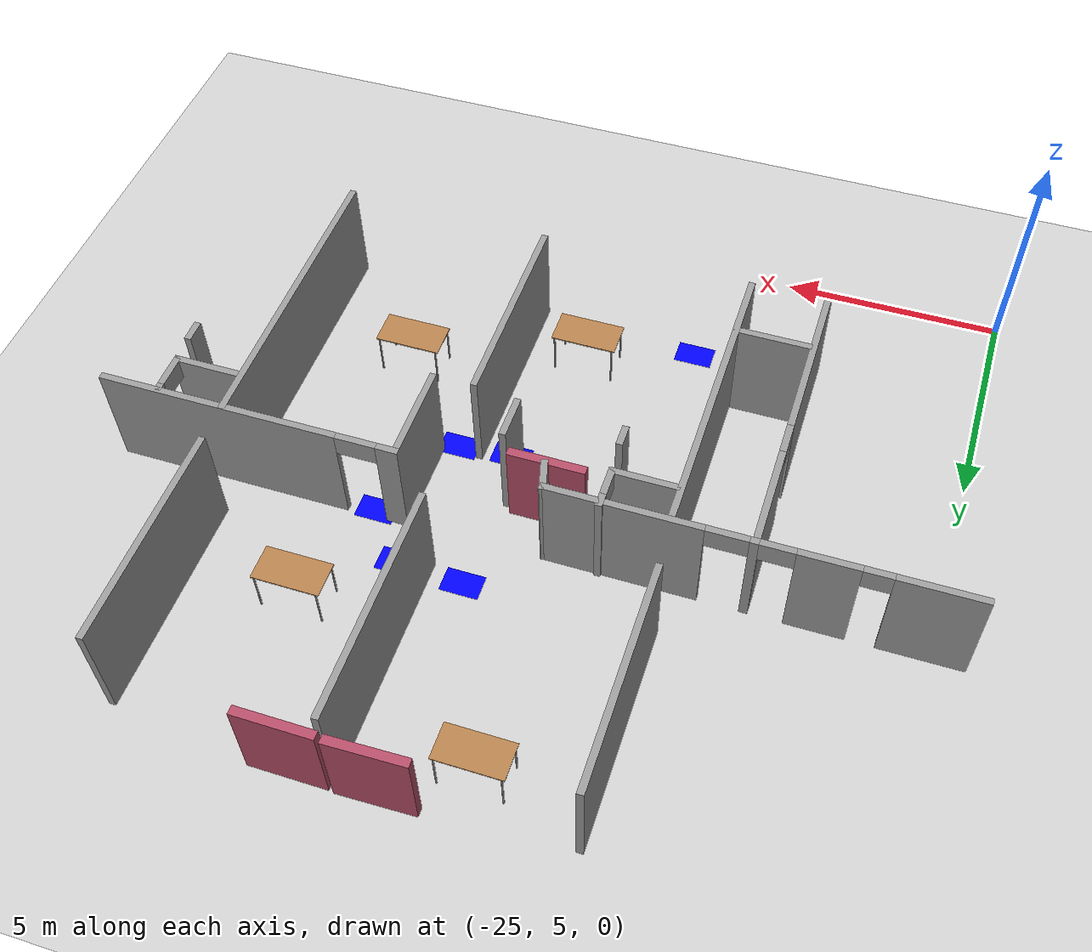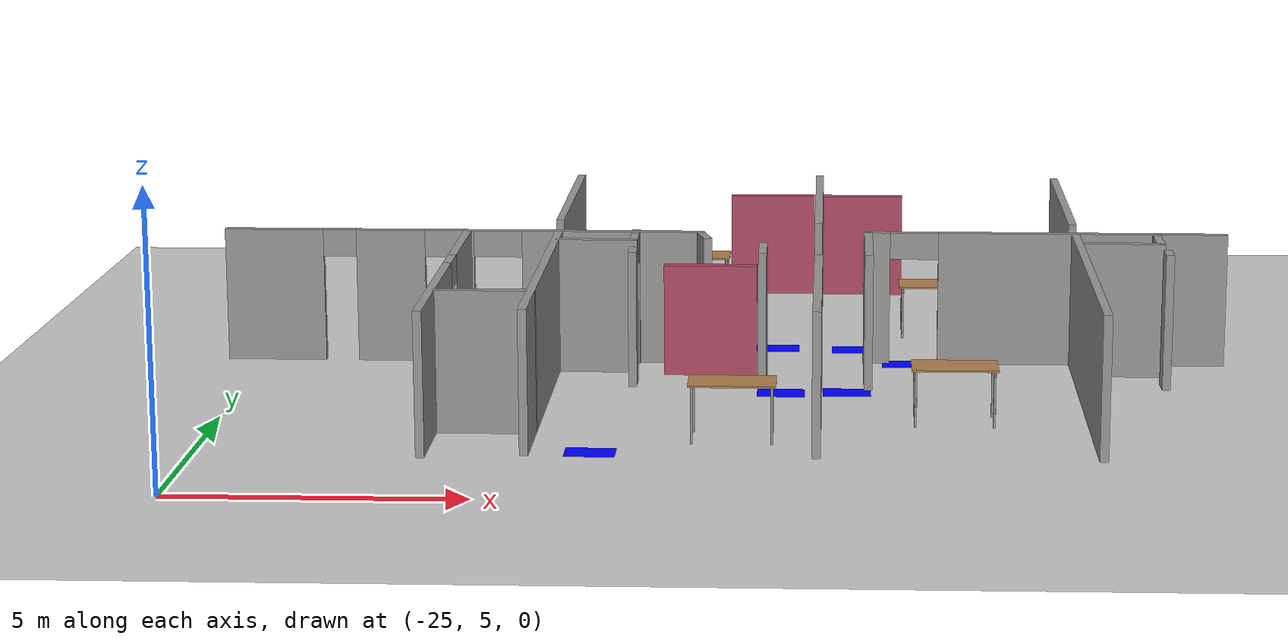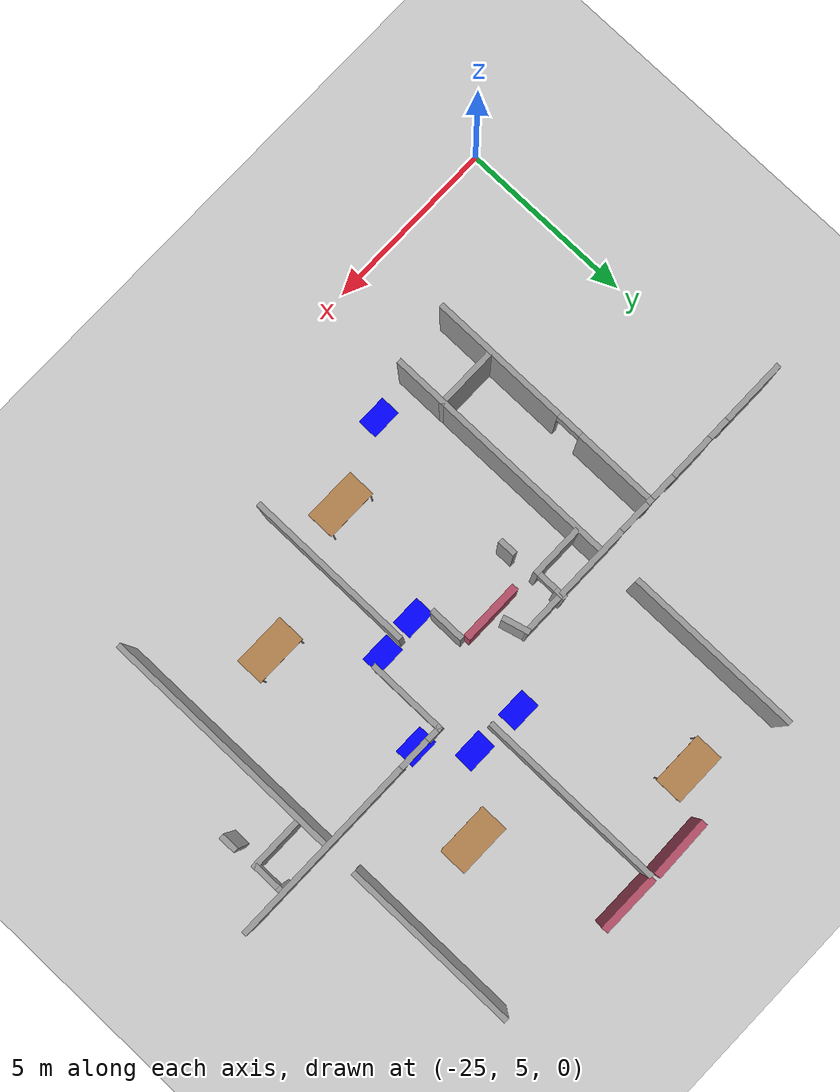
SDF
<sdf version="1.6">
 <world name="default">
  <model name="ground_plane">
   <static>1</static>
   <link name="link">
    <collision name="collision">
     <geometry><plane><normal>0 0 1</normal><size>100 100</size></plane></geometry>
     <surface><friction><ode><mu>100</mu><mu2>50</mu2></ode></friction></surface>
    </collision>
    <visual name="visual">
     <cast_shadows>0</cast_shadows>
     <geometry><plane><normal>0 0 1</normal><size>100 100</size></plane></geometry>
     <material>
      <script><uri>file://media/materials/scripts/gazebo.material</uri><name>Gazebo/Grey</name></script>
     </material>
    </visual>
   </link>
  </model>
  <model name="fin_se1f1.sdf">
   <pose>1.8125 -2.2901 0 0 -0 0</pose>
   <link name="Wall_100">
    <collision name="Wall_100_Collision">
     <geometry><box><size>2.25 0.15 2.5</size></box></geometry>
     <pose>0 0 1.25 0 -0 0</pose>
    </collision>
    <visual name="Wall_100_Visual">
     <pose>0 0 1.25 0 -0 0</pose>
     <geometry><box><size>2.25 0.15 2.5</size></box></geometry>
     <material>
      <script><uri>file://media/materials/scripts/gazebo.material</uri><name>Gazebo/Grey</name></script>
      <ambient>1 1 1 1</ambient>
     </material>
     <meta><layer>0</layer></meta>
    </visual>
    <pose>-15.464 15.7396 0 0 -0 1.5708</pose>
   </link>
   <link name="Wall_101">
    <pose>-12.164 16.7896 0 0 -0 0</pose>
    <visual name="Wall_101_Visual_0">
     <pose>-3.13147 0 1.25 0 -0 0</pose>
     <geometry><box><size>0.487063 0.15 2.5</size></box></geometry>
     <material>
      <script><uri>file://media/materials/scripts/gazebo.material</uri><name>Gazebo/Grey</name></script>
      <ambient>1 1 1 1</ambient>
     </material>
     <meta><layer>0</layer></meta>
    </visual>
    <collision name="Wall_101_Collision_0">
     <geometry><box><size>0.487063 0.15 2.5</size></box></geometry>
     <pose>-3.13147 0 1.25 0 -0 0</pose>
    </collision>
    <visual name="Wall_101_Visual_1">
     <pose>0.693532 0 1.25 0 -0 0</pose>
     <geometry><box><size>5.36294 0.15 2.5</size></box></geometry>
     <material>
      <script><uri>file://media/materials/scripts/gazebo.material</uri><name>Gazebo/Grey</name></script>
      <ambient>1 1 1 1</ambient>
     </material>
     <meta><layer>0</layer></meta>
    </visual>
    <collision name="Wall_101_Collision_1">
     <geometry><box><size>5.36294 0.15 2.5</size></box></geometry>
     <pose>0.693532 0 1.25 0 -0 0</pose>
    </collision>
    <visual name="Wall_101_Visual_2">
     <pose>-2.43794 0 2.25 0 -0 0</pose>
     <geometry><box><size>0.9 0.15 0.5</size></box></geometry>
     <material>
      <script><uri>file://media/materials/scripts/gazebo.material</uri><name>Gazebo/Grey</name></script>
      <ambient>1 1 1 1</ambient>
     </material>
     <meta><layer>0</layer></meta>
    </visual>
    <collision name="Wall_101_Collision_2">
     <geometry><box><size>0.9 0.15 0.5</size></box></geometry>
     <pose>-2.43794 0 2.25 0 -0 0</pose>
    </collision>
   </link>
   <link name="Wall_104">
    <collision name="Wall_104_Collision">
     <geometry><box><size>7 0.15 2.5</size></box></geometry>
     <pose>0 0 1.25 0 -0 0</pose>
    </collision>
    <visual name="Wall_104_Visual">
     <pose>0 0 1.25 0 -0 0</pose>
     <geometry><box><size>7 0.15 2.5</size></box></geometry>
     <material>
      <script><uri>file://media/materials/scripts/gazebo.material</uri><name>Gazebo/Grey</name></script>
      <ambient>1 1 1 1</ambient>
     </material>
     <meta><layer>0</layer></meta>
    </visual>
    <pose>-11.6118 13.3512 0 0 0 -1.5708</pose>
   </link>
   <link name="Wall_118">
    <collision name="Wall_118_Collision">
     <geometry><box><size>1.75 0.15 2.5</size></box></geometry>
     <pose>0 0 1.25 0 -0 0</pose>
    </collision>
    <visual name="Wall_118_Visual">
     <pose>0 0 1.25 0 -0 0</pose>
     <geometry><box><size>1.75 0.15 2.5</size></box></geometry>
     <material>
      <script><uri>file://media/materials/scripts/gazebo.material</uri><name>Gazebo/Grey</name></script>
      <ambient>1 1 1 1</ambient>
     </material>
     <meta><layer>0</layer></meta>
    </visual>
    <pose>-22.0422 11.426 0 0 -0 3.14159</pose>
   </link>
   <link name="Wall_120">
    <pose>-19.7977 16.3512 0 0 0 -1.5708</pose>
    <visual name="Wall_120_Visual_0">
     <pose>-0.341993 0 1.25 0 -0 0</pose>
     <geometry><box><size>0.316013 0.15 2.5</size></box></geometry>
     <material>
      <script><uri>file://media/materials/scripts/gazebo.material</uri><name>Gazebo/Grey</name></script>
      <ambient>1 1 1 1</ambient>
     </material>
     <meta><layer>0</layer></meta>
    </visual>
    <collision name="Wall_120_Collision_0">
     <geometry><box><size>0.316013 0.15 2.5</size></box></geometry>
     <pose>-0.341993 0 1.25 0 -0 0</pose>
    </collision>
    <visual name="Wall_120_Visual_1">
     <pose>0.158007 0 2.25 0 -0 0</pose>
     <geometry><box><size>0.683987 0.15 0.5</size></box></geometry>
     <material>
      <script><uri>file://media/materials/scripts/gazebo.material</uri><name>Gazebo/Grey</name></script>
      <ambient>1 1 1 1</ambient>
     </material>
     <meta><layer>0</layer></meta>
    </visual>
    <collision name="Wall_120_Collision_1">
     <geometry><box><size>0.683987 0.15 0.5</size></box></geometry>
     <pose>0.158007 0 2.25 0 -0 0</pose>
    </collision>
   </link>
   <link name="Wall_121">
    <collision name="Wall_121_Collision">
     <geometry><box><size>1.5 0.15 2.5</size></box></geometry>
     <pose>0 0 1.25 0 -0 0</pose>
    </collision>
    <visual name="Wall_121_Visual">
     <pose>0 0 1.25 0 -0 0</pose>
     <geometry><box><size>1.5 0.15 2.5</size></box></geometry>
     <material>
      <script><uri>file://media/materials/scripts/gazebo.material</uri><name>Gazebo/Grey</name></script>
      <ambient>1 1 1 1</ambient>
     </material>
     <meta><layer>0</layer></meta>
    </visual>
    <pose>-20.4727 15.9262 0 0 -0 3.14159</pose>
   </link>
   <link name="Wall_123">
    <collision name="Wall_123_Collision">
     <geometry><box><size>0.5 0.15 2.5</size></box></geometry>
     <pose>0 0 1.25 0 -0 0</pose>
    </collision>
    <visual name="Wall_123_Visual">
     <pose>0 0 1.25 0 -0 0</pose>
     <geometry><box><size>0.5 0.15 2.5</size></box></geometry>
     <material>
      <script><uri>file://media/materials/scripts/gazebo.material</uri><name>Gazebo/Grey</name></script>
      <ambient>1 1 1 1</ambient>
     </material>
     <meta><layer>0</layer></meta>
    </visual>
    <pose>-19.7442 14.9961 0 0 0 -1.5708</pose>
   </link>
   <link name="Wall_125">
    <collision name="Wall_125_Collision">
     <geometry><box><size>1 0.15 2.5</size></box></geometry>
     <pose>0 0 1.25 0 -0 0</pose>
    </collision>
    <visual name="Wall_125_Visual">
     <pose>0 0 1.25 0 -0 0</pose>
     <geometry><box><size>1 0.15 2.5</size></box></geometry>
     <material>
      <script><uri>file://media/materials/scripts/gazebo.material</uri><name>Gazebo/Grey</name></script>
      <ambient>1 1 1 1</ambient>
     </material>
     <meta><layer>0</layer></meta>
    </visual>
    <pose>-17.39 15.2276 0 0 0 -1.5708</pose>
   </link>
   <link name="Wall_127">
    <pose>-10.1137 16.2977 0 0 0 -1.5708</pose>
    <visual name="Wall_127_Visual_0">
     <pose>-0.408972 0 1.25 0 -0 0</pose>
     <geometry><box><size>0.182055 0.15 2.5</size></box></geometry>
     <material>
      <script><uri>file://media/materials/scripts/gazebo.material</uri><name>Gazebo/Grey</name></script>
      <ambient>1 1 1 1</ambient>
     </material>
     <meta><layer>0</layer></meta>
    </visual>
    <collision name="Wall_127_Collision_0">
     <geometry><box><size>0.182055 0.15 2.5</size></box></geometry>
     <pose>-0.408972 0 1.25 0 -0 0</pose>
    </collision>
    <visual name="Wall_127_Visual_1">
     <pose>0.480687 0 1.25 0 -0 0</pose>
     <geometry><box><size>0.038626 0.15 2.5</size></box></geometry>
     <material>
      <script><uri>file://media/materials/scripts/gazebo.material</uri><name>Gazebo/Grey</name></script>
      <ambient>1 1 1 1</ambient>
     </material>
     <meta><layer>0</layer></meta>
    </visual>
    <collision name="Wall_127_Collision_1">
     <geometry><box><size>0.038626 0.15 2.5</size></box></geometry>
     <pose>0.480687 0 1.25 0 -0 0</pose>
    </collision>
    <visual name="Wall_127_Visual_2">
     <pose>0.071714 0 2.25 0 -0 0</pose>
     <geometry><box><size>0.779319 0.15 0.5</size></box></geometry>
     <material>
      <script><uri>file://media/materials/scripts/gazebo.material</uri><name>Gazebo/Grey</name></script>
      <ambient>1 1 1 1</ambient>
     </material>
     <meta><layer>0</layer></meta>
    </visual>
    <collision name="Wall_127_Collision_2">
     <geometry><box><size>0.779319 0.15 0.5</size></box></geometry>
     <pose>0.071714 0 2.25 0 -0 0</pose>
    </collision>
   </link>
   <link name="Wall_128">
    <collision name="Wall_128_Collision">
     <geometry><box><size>1.5 0.15 2.5</size></box></geometry>
     <pose>0 0 1.25 0 -0 0</pose>
    </collision>
    <visual name="Wall_128_Visual">
     <pose>0 0 1.25 0 -0 0</pose>
     <geometry><box><size>1.5 0.15 2.5</size></box></geometry>
     <material>
      <script><uri>file://media/materials/scripts/gazebo.material</uri><name>Gazebo/Grey</name></script>
      <ambient>1 1 1 1</ambient>
     </material>
     <meta><layer>0</layer></meta>
    </visual>
    <pose>-10.7887 15.8727 0 0 -0 3.14159</pose>
   </link>
   <link name="Wall_130">
    <collision name="Wall_130_Collision">
     <geometry><box><size>0.5 0.15 2.5</size></box></geometry>
     <pose>0 0 1.25 0 -0 0</pose>
    </collision>
    <visual name="Wall_130_Visual">
     <pose>0 0 1.25 0 -0 0</pose>
     <geometry><box><size>0.5 0.15 2.5</size></box></geometry>
     <material>
      <script><uri>file://media/materials/scripts/gazebo.material</uri><name>Gazebo/Grey</name></script>
      <ambient>1 1 1 1</ambient>
     </material>
     <meta><layer>0</layer></meta>
    </visual>
    <pose>-10.0602 15.0496 0 0 0 -1.5708</pose>
   </link>
   <link name="Wall_82">
    <collision name="Wall_82_Collision">
     <geometry><box><size>5 0.15 2.5</size></box></geometry>
     <pose>0 0 1.25 0 -0 0</pose>
    </collision>
    <visual name="Wall_82_Visual">
     <pose>0 0 1.25 0 -0 0</pose>
     <geometry><box><size>5 0.15 2.5</size></box></geometry>
     <material>
      <script><uri>file://media/materials/scripts/gazebo.material</uri><name>Gazebo/Grey</name></script>
      <ambient>1 1 1 1</ambient>
     </material>
     <meta><layer>0</layer></meta>
    </visual>
    <pose>-11.5946 20.1602 0 0 -0 1.5708</pose>
   </link>
   <link name="Wall_84">
    <collision name="Wall_84_Collision">
     <geometry><box><size>5.25 0.15 2.5</size></box></geometry>
     <pose>0 0 1.25 0 -0 0</pose>
    </collision>
    <visual name="Wall_84_Visual">
     <pose>0 0 1.25 0 -0 0</pose>
     <geometry><box><size>5.25 0.15 2.5</size></box></geometry>
     <material>
      <script><uri>file://media/materials/scripts/gazebo.material</uri><name>Gazebo/Grey</name></script>
      <ambient>1 1 1 1</ambient>
     </material>
     <meta><layer>0</layer></meta>
    </visual>
    <pose>-16.3938 20.2305 0 0 0 -1.5708</pose>
   </link>
   <link name="Wall_86">
    <collision name="Wall_86_Collision">
     <geometry><box><size>5 0.15 2.5</size></box></geometry>
     <pose>0 0 1.25 0 -0 0</pose>
    </collision>
    <visual name="Wall_86_Visual">
     <pose>0 0 1.25 0 -0 0</pose>
     <geometry><box><size>5 0.15 2.5</size></box></geometry>
     <material>
      <script><uri>file://media/materials/scripts/gazebo.material</uri><name>Gazebo/Grey</name></script>
      <ambient>1 1 1 1</ambient>
     </material>
     <meta><layer>0</layer></meta>
    </visual>
    <pose>-21.316 20.294 0 0 0 -1.5708</pose>
   </link>
   <link name="Wall_91">
    <pose>-23.0235 16.7227 0 0 -0 0</pose>
    <visual name="Wall_91_Visual_0">
     <pose>-3.57417 0 1.25 0 -0 0</pose>
     <geometry><box><size>1.85166 0.15 2.5</size></box></geometry>
     <material>
      <script><uri>file://media/materials/scripts/gazebo.material</uri><name>Gazebo/Grey</name></script>
      <ambient>1 1 1 1</ambient>
     </material>
     <meta><layer>0</layer></meta>
    </visual>
    <collision name="Wall_91_Collision_0">
     <geometry><box><size>1.85166 0.15 2.5</size></box></geometry>
     <pose>-3.57417 0 1.25 0 -0 0</pose>
    </collision>
    <visual name="Wall_91_Visual_1">
     <pose>-1.38374 0 1.25 0 -0 0</pose>
     <geometry><box><size>1.29238 0.15 2.5</size></box></geometry>
     <material>
      <script><uri>file://media/materials/scripts/gazebo.material</uri><name>Gazebo/Grey</name></script>
      <ambient>1 1 1 1</ambient>
     </material>
     <meta><layer>0</layer></meta>
    </visual>
    <collision name="Wall_91_Collision_1">
     <geometry><box><size>1.29238 0.15 2.5</size></box></geometry>
     <pose>-1.38374 0 1.25 0 -0 0</pose>
    </collision>
    <visual name="Wall_91_Visual_2">
     <pose>0.094604 0 1.25 0 -0 0</pose>
     <geometry><box><size>0.186132 0.15 2.5</size></box></geometry>
     <material>
      <script><uri>file://media/materials/scripts/gazebo.material</uri><name>Gazebo/Grey</name></script>
      <ambient>1 1 1 1</ambient>
     </material>
     <meta><layer>0</layer></meta>
    </visual>
    <collision name="Wall_91_Collision_2">
     <geometry><box><size>0.186132 0.15 2.5</size></box></geometry>
     <pose>0.094604 0 1.25 0 -0 0</pose>
    </collision>
    <visual name="Wall_91_Visual_3">
     <pose>2.79384 0 1.25 0 -0 0</pose>
     <geometry><box><size>3.41233 0.15 2.5</size></box></geometry>
     <material>
      <script><uri>file://media/materials/scripts/gazebo.material</uri><name>Gazebo/Grey</name></script>
      <ambient>1 1 1 1</ambient>
     </material>
     <meta><layer>0</layer></meta>
    </visual>
    <collision name="Wall_91_Collision_3">
     <geometry><box><size>3.41233 0.15 2.5</size></box></geometry>
     <pose>2.79384 0 1.25 0 -0 0</pose>
    </collision>
    <visual name="Wall_91_Visual_4">
     <pose>-2.33914 0 2.25 0 -0 0</pose>
     <geometry><box><size>0.61841 0.15 0.5</size></box></geometry>
     <material>
      <script><uri>file://media/materials/scripts/gazebo.material</uri><name>Gazebo/Grey</name></script>
      <ambient>1 1 1 1</ambient>
     </material>
     <meta><layer>0</layer></meta>
    </visual>
    <collision name="Wall_91_Collision_4">
     <geometry><box><size>0.61841 0.15 0.5</size></box></geometry>
     <pose>-2.33914 0 2.25 0 -0 0</pose>
    </collision>
    <visual name="Wall_91_Visual_5">
     <pose>-0.368008 0 2.25 0 -0 0</pose>
     <geometry><box><size>0.739091 0.15 0.5</size></box></geometry>
     <material>
      <script><uri>file://media/materials/scripts/gazebo.material</uri><name>Gazebo/Grey</name></script>
      <ambient>1 1 1 1</ambient>
     </material>
     <meta><layer>0</layer></meta>
    </visual>
    <collision name="Wall_91_Collision_5">
     <geometry><box><size>0.739091 0.15 0.5</size></box></geometry>
     <pose>-0.368008 0 2.25 0 -0 0</pose>
    </collision>
    <visual name="Wall_91_Visual_6">
     <pose>0.637671 0 2.25 0 -0 0</pose>
     <geometry><box><size>0.9 0.15 0.5</size></box></geometry>
     <material>
      <script><uri>file://media/materials/scripts/gazebo.material</uri><name>Gazebo/Grey</name></script>
      <ambient>1 1 1 1</ambient>
     </material>
     <meta><layer>0</layer></meta>
    </visual>
    <collision name="Wall_91_Collision_6">
     <geometry><box><size>0.9 0.15 0.5</size></box></geometry>
     <pose>0.637671 0 2.25 0 -0 0</pose>
    </collision>
   </link>
   <link name="Wall_92">
    <collision name="Wall_92_Collision">
     <geometry><box><size>0.75 0.15 2.5</size></box></geometry>
     <pose>0 0 1.25 0 -0 0</pose>
    </collision>
    <visual name="Wall_92_Visual">
     <pose>0 0 1.25 0 -0 0</pose>
     <geometry><box><size>0.75 0.15 2.5</size></box></geometry>
     <material>
      <script><uri>file://media/materials/scripts/gazebo.material</uri><name>Gazebo/Grey</name></script>
      <ambient>1 1 1 1</ambient>
     </material>
     <meta><layer>0</layer></meta>
    </visual>
    <pose>-18.5209 16.4329 0 0 0 -1.309</pose>
   </link>
   <link name="Wall_94">
    <collision name="Wall_94_Collision">
     <geometry><box><size>6.75 0.15 2.5</size></box></geometry>
     <pose>0 0 1.25 0 -0 0</pose>
    </collision>
    <visual name="Wall_94_Visual">
     <pose>0 0 1.25 0 -0 0</pose>
     <geometry><box><size>6.75 0.15 2.5</size></box></geometry>
     <material>
      <script><uri>file://media/materials/scripts/gazebo.material</uri><name>Gazebo/Grey</name></script>
      <ambient>1 1 1 1</ambient>
     </material>
     <meta><layer>0</layer></meta>
    </visual>
    <pose>-21.2422 13.3157 0 0 0 -1.5708</pose>
   </link>
   <link name="Wall_96">
    <pose>-22.9543 13.2442 0 0 0 -1.5708</pose>
    <visual name="Wall_96_Visual_0">
     <pose>-2.32948 0 1.25 0 -0 0</pose>
     <geometry><box><size>2.34105 0.15 2.5</size></box></geometry>
     <material>
      <script><uri>file://media/materials/scripts/gazebo.material</uri><name>Gazebo/Grey</name></script>
      <ambient>1 1 1 1</ambient>
     </material>
     <meta><layer>0</layer></meta>
    </visual>
    <collision name="Wall_96_Collision_0">
     <geometry><box><size>2.34105 0.15 2.5</size></box></geometry>
     <pose>-2.32948 0 1.25 0 -0 0</pose>
    </collision>
    <visual name="Wall_96_Visual_1">
     <pose>1.53001 0 1.25 0 -0 0</pose>
     <geometry><box><size>3.93998 0.15 2.5</size></box></geometry>
     <material>
      <script><uri>file://media/materials/scripts/gazebo.material</uri><name>Gazebo/Grey</name></script>
      <ambient>1 1 1 1</ambient>
     </material>
     <meta><layer>0</layer></meta>
    </visual>
    <collision name="Wall_96_Collision_1">
     <geometry><box><size>3.93998 0.15 2.5</size></box></geometry>
     <pose>1.53001 0 1.25 0 -0 0</pose>
    </collision>
    <visual name="Wall_96_Visual_2">
     <pose>-0.799464 0 2.25 0 -0 0</pose>
     <geometry><box><size>0.718978 0.15 0.5</size></box></geometry>
     <material>
      <script><uri>file://media/materials/scripts/gazebo.material</uri><name>Gazebo/Grey</name></script>
      <ambient>1 1 1 1</ambient>
     </material>
     <meta><layer>0</layer></meta>
    </visual>
    <collision name="Wall_96_Collision_2">
     <geometry><box><size>0.718978 0.15 0.5</size></box></geometry>
     <pose>-0.799464 0 2.25 0 -0 0</pose>
    </collision>
   </link>
   <link name="Wall_98">
    <collision name="Wall_98_Collision">
     <geometry><box><size>4.75 0.15 2.5</size></box></geometry>
     <pose>0 0 1.25 0 -0 0</pose>
    </collision>
    <visual name="Wall_98_Visual">
     <pose>0 0 1.25 0 -0 0</pose>
     <geometry><box><size>4.75 0.15 2.5</size></box></geometry>
     <material>
      <script><uri>file://media/materials/scripts/gazebo.material</uri><name>Gazebo/Grey</name></script>
      <ambient>1 1 1 1</ambient>
     </material>
     <meta><layer>0</layer></meta>
    </visual>
    <pose>-16.3735 12.2826 0 0 0 -1.5708</pose>
   </link>
   <static>1</static>
  </model>
  <model name="table_0">
   <static>1</static>
   <link name="link">
    <collision name="surface">
     <pose>0 0 1 0 -0 0</pose>
     <geometry><box><size>1.5 0.8 0.03</size></box></geometry>
     <surface><friction><ode><mu>0.6</mu><mu2>0.6</mu2></ode></friction></surface>
    </collision>
    <visual name="visual1">
     <pose>0 0 1 0 -0 0</pose>
     <geometry><box><size>1.5 0.8 0.03</size></box></geometry>
     <material>
      <script><uri>file://media/materials/scripts/gazebo.material</uri><name>Gazebo/Wood</name></script>
     </material>
    </visual>
    <collision name="front_left_leg">
     <pose>0.68 0.38 0.5 0 -0 0</pose>
     <geometry><cylinder><radius>0.02</radius><length>1</length></cylinder></geometry>
    </collision>
    <visual name="front_left_leg">
     <pose>0.68 0.38 0.5 0 -0 0</pose>
     <geometry><cylinder><radius>0.02</radius><length>1</length></cylinder></geometry>
     <material>
      <script><uri>file://media/materials/scripts/gazebo.material</uri><name>Gazebo/Grey</name></script>
     </material>
    </visual>
    <collision name="front_right_leg">
     <pose>0.68 -0.38 0.5 0 -0 0</pose>
     <geometry><cylinder><radius>0.02</radius><length>1</length></cylinder></geometry>
    </collision>
    <visual name="front_right_leg">
     <pose>0.68 -0.38 0.5 0 -0 0</pose>
     <geometry><cylinder><radius>0.02</radius><length>1</length></cylinder></geometry>
     <material>
      <script><uri>file://media/materials/scripts/gazebo.material</uri><name>Gazebo/Grey</name></script>
     </material>
    </visual>
    <collision name="back_right_leg">
     <pose>-0.68 -0.38 0.5 0 -0 0</pose>
     <geometry><cylinder><radius>0.02</radius><length>1</length></cylinder></geometry>
    </collision>
    <visual name="back_right_leg">
     <pose>-0.68 -0.38 0.5 0 -0 0</pose>
     <geometry><cylinder><radius>0.02</radius><length>1</length></cylinder></geometry>
     <material>
      <script><uri>file://media/materials/scripts/gazebo.material</uri><name>Gazebo/Grey</name></script>
     </material>
    </visual>
    <collision name="back_left_leg">
     <pose>-0.68 0.38 0.5 0 -0 0</pose>
     <geometry><cylinder><radius>0.02</radius><length>1</length></cylinder></geometry>
    </collision>
    <visual name="back_left_leg">
     <pose>-0.68 0.38 0.5 0 -0 0</pose>
     <geometry><cylinder><radius>0.02</radius><length>1</length></cylinder></geometry>
     <material>
      <script><uri>file://media/materials/scripts/gazebo.material</uri><name>Gazebo/Grey</name></script>
     </material>
    </visual>
   </link>
   <pose>-17.1552 19.6086 0 0 -0 0</pose>
  </model>
  <model name="table_1">
   <static>1</static>
   <link name="link">
    <collision name="surface">
     <pose>0 0 1 0 -0 0</pose>
     <geometry><box><size>1.5 0.8 0.03</size></box></geometry>
     <surface><friction><ode><mu>0.6</mu><mu2>0.6</mu2></ode></friction></surface>
    </collision>
    <visual name="visual1">
     <pose>0 0 1 0 -0 0</pose>
     <geometry><box><size>1.5 0.8 0.03</size></box></geometry>
     <material>
      <script><uri>file://media/materials/scripts/gazebo.material</uri><name>Gazebo/Wood</name></script>
     </material>
    </visual>
    <collision name="front_left_leg">
     <pose>0.68 0.38 0.5 0 -0 0</pose>
     <geometry><cylinder><radius>0.02</radius><length>1</length></cylinder></geometry>
    </collision>
    <visual name="front_left_leg">
     <pose>0.68 0.38 0.5 0 -0 0</pose>
     <geometry><cylinder><radius>0.02</radius><length>1</length></cylinder></geometry>
     <material>
      <script><uri>file://media/materials/scripts/gazebo.material</uri><name>Gazebo/Grey</name></script>
     </material>
    </visual>
    <collision name="front_right_leg">
     <pose>0.68 -0.38 0.5 0 -0 0</pose>
     <geometry><cylinder><radius>0.02</radius><length>1</length></cylinder></geometry>
    </collision>
    <visual name="front_right_leg">
     <pose>0.68 -0.38 0.5 0 -0 0</pose>
     <geometry><cylinder><radius>0.02</radius><length>1</length></cylinder></geometry>
     <material>
      <script><uri>file://media/materials/scripts/gazebo.material</uri><name>Gazebo/Grey</name></script>
     </material>
    </visual>
    <collision name="back_right_leg">
     <pose>-0.68 -0.38 0.5 0 -0 0</pose>
     <geometry><cylinder><radius>0.02</radius><length>1</length></cylinder></geometry>
    </collision>
    <visual name="back_right_leg">
     <pose>-0.68 -0.38 0.5 0 -0 0</pose>
     <geometry><cylinder><radius>0.02</radius><length>1</length></cylinder></geometry>
     <material>
      <script><uri>file://media/materials/scripts/gazebo.material</uri><name>Gazebo/Grey</name></script>
     </material>
    </visual>
    <collision name="back_left_leg">
     <pose>-0.68 0.38 0.5 0 -0 0</pose>
     <geometry><cylinder><radius>0.02</radius><length>1</length></cylinder></geometry>
    </collision>
    <visual name="back_left_leg">
     <pose>-0.68 0.38 0.5 0 -0 0</pose>
     <geometry><cylinder><radius>0.02</radius><length>1</length></cylinder></geometry>
     <material>
      <script><uri>file://media/materials/scripts/gazebo.material</uri><name>Gazebo/Grey</name></script>
     </material>
    </visual>
   </link>
   <pose>-12.2601 16.9623 0 0 -0 0</pose>
  </model>
  <model name="table_2">
   <static>1</static>
   <link name="link">
    <collision name="surface">
     <pose>0 0 1 0 -0 0</pose>
     <geometry><box><size>1.5 0.8 0.03</size></box></geometry>
     <surface><friction><ode><mu>0.6</mu><mu2>0.6</mu2></ode></friction></surface>
    </collision>
    <visual name="visual1">
     <pose>0 0 1 0 -0 0</pose>
     <geometry><box><size>1.5 0.8 0.03</size></box></geometry>
     <material>
      <script><uri>file://media/materials/scripts/gazebo.material</uri><name>Gazebo/Wood</name></script>
     </material>
    </visual>
    <collision name="front_left_leg">
     <pose>0.68 0.38 0.5 0 -0 0</pose>
     <geometry><cylinder><radius>0.02</radius><length>1</length></cylinder></geometry>
    </collision>
    <visual name="front_left_leg">
     <pose>0.68 0.38 0.5 0 -0 0</pose>
     <geometry><cylinder><radius>0.02</radius><length>1</length></cylinder></geometry>
     <material>
      <script><uri>file://media/materials/scripts/gazebo.material</uri><name>Gazebo/Grey</name></script>
     </material>
    </visual>
    <collision name="front_right_leg">
     <pose>0.68 -0.38 0.5 0 -0 0</pose>
     <geometry><cylinder><radius>0.02</radius><length>1</length></cylinder></geometry>
    </collision>
    <visual name="front_right_leg">
     <pose>0.68 -0.38 0.5 0 -0 0</pose>
     <geometry><cylinder><radius>0.02</radius><length>1</length></cylinder></geometry>
     <material>
      <script><uri>file://media/materials/scripts/gazebo.material</uri><name>Gazebo/Grey</name></script>
     </material>
    </visual>
    <collision name="back_right_leg">
     <pose>-0.68 -0.38 0.5 0 -0 0</pose>
     <geometry><cylinder><radius>0.02</radius><length>1</length></cylinder></geometry>
    </collision>
    <visual name="back_right_leg">
     <pose>-0.68 -0.38 0.5 0 -0 0</pose>
     <geometry><cylinder><radius>0.02</radius><length>1</length></cylinder></geometry>
     <material>
      <script><uri>file://media/materials/scripts/gazebo.material</uri><name>Gazebo/Grey</name></script>
     </material>
    </visual>
    <collision name="back_left_leg">
     <pose>-0.68 0.38 0.5 0 -0 0</pose>
     <geometry><cylinder><radius>0.02</radius><length>1</length></cylinder></geometry>
    </collision>
    <visual name="back_left_leg">
     <pose>-0.68 0.38 0.5 0 -0 0</pose>
     <geometry><cylinder><radius>0.02</radius><length>1</length></cylinder></geometry>
     <material>
      <script><uri>file://media/materials/scripts/gazebo.material</uri><name>Gazebo/Grey</name></script>
     </material>
    </visual>
   </link>
   <pose>-15.9954 8.87778 0 0 -0 0</pose>
  </model>
  <model name="table_3">
   <static>1</static>
   <link name="link">
    <collision name="surface">
     <pose>0 0 1 0 -0 0</pose>
     <geometry><box><size>1.5 0.8 0.03</size></box></geometry>
     <surface><friction><ode><mu>0.6</mu><mu2>0.6</mu2></ode></friction></surface>
    </collision>
    <visual name="visual1">
     <pose>0 0 1 0 -0 0</pose>
     <geometry><box><size>1.5 0.8 0.03</size></box></geometry>
     <material>
      <script><uri>file://media/materials/scripts/gazebo.material</uri><name>Gazebo/Wood</name></script>
     </material>
    </visual>
    <collision name="front_left_leg">
     <pose>0.68 0.38 0.5 0 -0 0</pose>
     <geometry><cylinder><radius>0.02</radius><length>1</length></cylinder></geometry>
    </collision>
    <visual name="front_left_leg">
     <pose>0.68 0.38 0.5 0 -0 0</pose>
     <geometry><cylinder><radius>0.02</radius><length>1</length></cylinder></geometry>
     <material>
      <script><uri>file://media/materials/scripts/gazebo.material</uri><name>Gazebo/Grey</name></script>
     </material>
    </visual>
    <collision name="front_right_leg">
     <pose>0.68 -0.38 0.5 0 -0 0</pose>
     <geometry><cylinder><radius>0.02</radius><length>1</length></cylinder></geometry>
    </collision>
    <visual name="front_right_leg">
     <pose>0.68 -0.38 0.5 0 -0 0</pose>
     <geometry><cylinder><radius>0.02</radius><length>1</length></cylinder></geometry>
     <material>
      <script><uri>file://media/materials/scripts/gazebo.material</uri><name>Gazebo/Grey</name></script>
     </material>
    </visual>
    <collision name="back_right_leg">
     <pose>-0.68 -0.38 0.5 0 -0 0</pose>
     <geometry><cylinder><radius>0.02</radius><length>1</length></cylinder></geometry>
    </collision>
    <visual name="back_right_leg">
     <pose>-0.68 -0.38 0.5 0 -0 0</pose>
     <geometry><cylinder><radius>0.02</radius><length>1</length></cylinder></geometry>
     <material>
      <script><uri>file://media/materials/scripts/gazebo.material</uri><name>Gazebo/Grey</name></script>
     </material>
    </visual>
    <collision name="back_left_leg">
     <pose>-0.68 0.38 0.5 0 -0 0</pose>
     <geometry><cylinder><radius>0.02</radius><length>1</length></cylinder></geometry>
    </collision>
    <visual name="back_left_leg">
     <pose>-0.68 0.38 0.5 0 -0 0</pose>
     <geometry><cylinder><radius>0.02</radius><length>1</length></cylinder></geometry>
     <material>
      <script><uri>file://media/materials/scripts/gazebo.material</uri><name>Gazebo/Grey</name></script>
     </material>
    </visual>
   </link>
   <pose>-12.1812 10.1292 0 0 -0 0</pose>
  </model>
  <model name="doorOutside_clone_0">
   <link name="link">
    <pose>0.155539 -0.366282 0.216958 0 -0 0</pose>
    <inertial>
     <mass>2.13199</mass>
     <inertia>
      <ixx>0.452656</ixx>
      <ixy>0</ixy>
      <ixz>0</ixz>
      <iyy>0.796738</iyy>
      <iyz>0</iyz>
      <izz>0.699414</izz>
     </inertia>
    </inertial>
    <visual name="visual">
     <geometry><box><size>1.71368 0.198843 2.05986</size></box></geometry>
     <material>
      <script><name>Gazebo/Grey</name><uri>file://media/materials/scripts/gazebo.material</uri></script>
      <ambient>0.7 0.3 0.4 1</ambient>
      <diffuse>0.7 0.7 0.7 1</diffuse>
      <specular>0.01 0.01 0.01 1</specular>
      <emissive>0 0 0 1</emissive>
      <shader type="vertex"><normal_map>__default__</normal_map></shader>
      <lighting>0</lighting>
     </material>
    </visual>
    <collision name="collision">
     <geometry><box><size>1.71368 0.198843 2.05986</size></box></geometry>
     <surface>
      <friction>
       <ode><mu>1</mu><mu2>1</mu2><fdir1>0 0 0</fdir1><slip1>0</slip1><slip2>0</slip2></ode>
       <torsional>
        <coefficient>1</coefficient>
        <patch_radius>0</patch_radius>
        <surface_radius>0</surface_radius>
        <use_patch_radius>1</use_patch_radius>
        <ode><slip>0</slip></ode>
       </torsional>
      </friction>
      <bounce><restitution_coefficient>0</restitution_coefficient><threshold>1e+06</threshold></bounce>
      <contact>
       <collide_without_contact>0</collide_without_contact>
       <collide_without_contact_bitmask>1</collide_without_contact_bitmask>
       <collide_bitmask>1</collide_bitmask>
       <ode>
        <soft_cfm>0</soft_cfm>
        <soft_erp>0.2</soft_erp>
        <kp>1e+13</kp>
        <kd>1</kd>
        <max_vel>0.01</max_vel>
        <min_depth>0</min_depth>
       </ode>
       <bullet>
        <split_impulse>1</split_impulse>
        <split_impulse_penetration_threshold>-0.01</split_impulse_penetration_threshold>
        <soft_cfm>0</soft_cfm>
        <soft_erp>0.2</soft_erp>
        <kp>1e+13</kp>
        <kd>1</kd>
       </bullet>
      </contact>
     </surface>
    </collision>
   </link>
   <static>1</static>
   <pose>-15.712 21.0347 0.812963 1e-06 5e-06 0.023116</pose>
  </model>
  <model name="doorOutside_clone_1">
   <link name="link">
    <pose>0.155539 -0.366282 0.216958 0 -0 0</pose>
    <inertial>
     <mass>2.13199</mass>
     <inertia>
      <ixx>0.452656</ixx>
      <ixy>0</ixy>
      <ixz>0</ixz>
      <iyy>0.796738</iyy>
      <iyz>0</iyz>
      <izz>0.699414</izz>
     </inertia>
    </inertial>
    <visual name="visual">
     <geometry><box><size>1.71368 0.198843 2.05986</size></box></geometry>
     <material>
      <script><name>Gazebo/Grey</name><uri>file://media/materials/scripts/gazebo.material</uri></script>
      <ambient>0.7 0.3 0.4 1</ambient>
      <diffuse>0.7 0.7 0.7 1</diffuse>
      <specular>0.01 0.01 0.01 1</specular>
      <emissive>0 0 0 1</emissive>
      <shader type="vertex"><normal_map>__default__</normal_map></shader>
      <lighting>0</lighting>
     </material>
    </visual>
    <collision name="collision">
     <geometry><box><size>1.71368 0.198843 2.05986</size></box></geometry>
     <surface>
      <friction>
       <ode><mu>1</mu><mu2>1</mu2><fdir1>0 0 0</fdir1><slip1>0</slip1><slip2>0</slip2></ode>
       <torsional>
        <coefficient>1</coefficient>
        <patch_radius>0</patch_radius>
        <surface_radius>0</surface_radius>
        <use_patch_radius>1</use_patch_radius>
        <ode><slip>0</slip></ode>
       </torsional>
      </friction>
      <bounce><restitution_coefficient>0</restitution_coefficient><threshold>1e+06</threshold></bounce>
      <contact>
       <collide_without_contact>0</collide_without_contact>
       <collide_without_contact_bitmask>1</collide_without_contact_bitmask>
       <collide_bitmask>1</collide_bitmask>
       <ode>
        <soft_cfm>0</soft_cfm>
        <soft_erp>0.2</soft_erp>
        <kp>1e+13</kp>
        <kd>1</kd>
        <max_vel>0.01</max_vel>
        <min_depth>0</min_depth>
       </ode>
       <bullet>
        <split_impulse>1</split_impulse>
        <split_impulse_penetration_threshold>-0.01</split_impulse_penetration_threshold>
        <soft_cfm>0</soft_cfm>
        <soft_erp>0.2</soft_erp>
        <kp>1e+13</kp>
        <kd>1</kd>
       </bullet>
      </contact>
     </surface>
    </collision>
   </link>
   <static>1</static>
   <pose>-13.8904 21.029 0.812972 0 0 -0.003731</pose>
  </model>
  <model name="intersection_5">
   <link name="link">
    <inertial>
     <mass>0.0352517</mass>
     <inertia>
      <ixx>0.000997067</ixx>
      <ixy>0</ixy>
      <ixz>0</ixz>
      <iyy>0.00220147</iyy>
      <iyz>0</iyz>
      <izz>0.0031692</izz>
     </inertia>
    </inertial>
    <visual name="visual">
     <geometry><box><size>0.862743 0.578289 1e-06</size></box></geometry>
     <material>
      <script><name>Gazebo/Grey</name><uri>file://media/materials/scripts/gazebo.material</uri></script>
      <ambient>0 0 1 1</ambient>
      <diffuse>0 0 1 1</diffuse>
      <specular>0 0 1 1</specular>
      <emissive>0 0 1 1</emissive>
      <shader type="vertex"><normal_map>__default__</normal_map></shader>
     </material>
    </visual>
    <collision name="collision">
     <geometry><box><size>0.862743 0.578289 0.000477</size></box></geometry>
     <surface>
      <friction>
       <ode><mu>1</mu><mu2>1</mu2><fdir1>0 0 0</fdir1><slip1>0</slip1><slip2>0</slip2></ode>
       <torsional>
        <coefficient>1</coefficient>
        <patch_radius>0</patch_radius>
        <surface_radius>0</surface_radius>
        <use_patch_radius>1</use_patch_radius>
        <ode><slip>0</slip></ode>
       </torsional>
      </friction>
      <bounce><restitution_coefficient>0</restitution_coefficient><threshold>1e+06</threshold></bounce>
      <contact>
       <collide_without_contact>0</collide_without_contact>
       <collide_without_contact_bitmask>1</collide_without_contact_bitmask>
       <collide_bitmask>1</collide_bitmask>
       <ode>
        <soft_cfm>0</soft_cfm>
        <soft_erp>0.2</soft_erp>
        <kp>1e+13</kp>
        <kd>1</kd>
        <max_vel>0.01</max_vel>
        <min_depth>0</min_depth>
       </ode>
       <bullet>
        <split_impulse>1</split_impulse>
        <split_impulse_penetration_threshold>-0.01</split_impulse_penetration_threshold>
        <soft_cfm>0</soft_cfm>
        <soft_erp>0.2</soft_erp>
        <kp>1e+13</kp>
        <kd>1</kd>
       </bullet>
      </contact>
     </surface>
    </collision>
   </link>
   <static>1</static>
   <pose>-15.3659 15.5975 0 0 -0 0</pose>
  </model>
  <model name="intersection_6">
   <link name="link">
    <inertial>
     <mass>0.0352517</mass>
     <inertia>
      <ixx>0.000997067</ixx>
      <ixy>0</ixy>
      <ixz>0</ixz>
      <iyy>0.00220147</iyy>
      <iyz>0</iyz>
      <izz>0.0031692</izz>
     </inertia>
    </inertial>
    <visual name="visual">
     <geometry><box><size>0.862743 0.578289 1e-06</size></box></geometry>
     <material>
      <script><name>Gazebo/Grey</name><uri>file://media/materials/scripts/gazebo.material</uri></script>
      <ambient>0 0 1 1</ambient>
      <diffuse>0 0 1 1</diffuse>
      <specular>0 0 1 1</specular>
      <emissive>0 0 1 1</emissive>
      <shader type="vertex"><normal_map>__default__</normal_map></shader>
     </material>
    </visual>
    <collision name="collision">
     <geometry><box><size>0.862743 0.578289 0.000477</size></box></geometry>
     <surface>
      <friction>
       <ode><mu>1</mu><mu2>1</mu2><fdir1>0 0 0</fdir1><slip1>0</slip1><slip2>0</slip2></ode>
       <torsional>
        <coefficient>1</coefficient>
        <patch_radius>0</patch_radius>
        <surface_radius>0</surface_radius>
        <use_patch_radius>1</use_patch_radius>
        <ode><slip>0</slip></ode>
       </torsional>
      </friction>
      <bounce><restitution_coefficient>0</restitution_coefficient><threshold>1e+06</threshold></bounce>
      <contact>
       <collide_without_contact>0</collide_without_contact>
       <collide_without_contact_bitmask>1</collide_without_contact_bitmask>
       <collide_bitmask>1</collide_bitmask>
       <ode>
        <soft_cfm>0</soft_cfm>
        <soft_erp>0.2</soft_erp>
        <kp>1e+13</kp>
        <kd>1</kd>
        <max_vel>0.01</max_vel>
        <min_depth>0</min_depth>
       </ode>
       <bullet>
        <split_impulse>1</split_impulse>
        <split_impulse_penetration_threshold>-0.01</split_impulse_penetration_threshold>
        <soft_cfm>0</soft_cfm>
        <soft_erp>0.2</soft_erp>
        <kp>1e+13</kp>
        <kd>1</kd>
       </bullet>
      </contact>
     </surface>
    </collision>
   </link>
   <static>1</static>
   <pose>-15.2232 12.0738 0 0 -0 0</pose>
  </model>
  <model name="intersection_7">
   <link name="link">
    <inertial>
     <mass>0.0352517</mass>
     <inertia>
      <ixx>0.000997067</ixx>
      <ixy>0</ixy>
      <ixz>0</ixz>
      <iyy>0.00220147</iyy>
      <iyz>0</iyz>
      <izz>0.0031692</izz>
     </inertia>
    </inertial>
    <visual name="visual">
     <geometry><box><size>0.862743 0.578289 1e-06</size></box></geometry>
     <material>
      <script><name>Gazebo/Grey</name><uri>file://media/materials/scripts/gazebo.material</uri></script>
      <ambient>0 0 1 1</ambient>
      <diffuse>0 0 1 1</diffuse>
      <specular>0 0 1 1</specular>
      <emissive>0 0 1 1</emissive>
      <shader type="vertex"><normal_map>__default__</normal_map></shader>
     </material>
    </visual>
    <collision name="collision">
     <geometry><box><size>0.862743 0.578289 0.000477</size></box></geometry>
     <surface>
      <friction>
       <ode><mu>1</mu><mu2>1</mu2><fdir1>0 0 0</fdir1><slip1>0</slip1><slip2>0</slip2></ode>
       <torsional>
        <coefficient>1</coefficient>
        <patch_radius>0</patch_radius>
        <surface_radius>0</surface_radius>
        <use_patch_radius>1</use_patch_radius>
        <ode><slip>0</slip></ode>
       </torsional>
      </friction>
      <bounce><restitution_coefficient>0</restitution_coefficient><threshold>1e+06</threshold></bounce>
      <contact>
       <collide_without_contact>0</collide_without_contact>
       <collide_without_contact_bitmask>1</collide_without_contact_bitmask>
       <collide_bitmask>1</collide_bitmask>
       <ode>
        <soft_cfm>0</soft_cfm>
        <soft_erp>0.2</soft_erp>
        <kp>1e+13</kp>
        <kd>1</kd>
        <max_vel>0.01</max_vel>
        <min_depth>0</min_depth>
       </ode>
       <bullet>
        <split_impulse>1</split_impulse>
        <split_impulse_penetration_threshold>-0.01</split_impulse_penetration_threshold>
        <soft_cfm>0</soft_cfm>
        <soft_erp>0.2</soft_erp>
        <kp>1e+13</kp>
        <kd>1</kd>
       </bullet>
      </contact>
     </surface>
    </collision>
   </link>
   <static>1</static>
   <pose>-14.0286 12.1568 0 0 -0 0</pose>
  </model>
  <model name="intersection_8">
   <link name="link">
    <inertial>
     <mass>0.0352517</mass>
     <inertia>
      <ixx>0.000997067</ixx>
      <ixy>0</ixy>
      <ixz>0</ixz>
      <iyy>0.00220147</iyy>
      <iyz>0</iyz>
      <izz>0.0031692</izz>
     </inertia>
    </inertial>
    <visual name="visual">
     <geometry><box><size>0.862743 0.578289 1e-06</size></box></geometry>
     <material>
      <script><name>Gazebo/Grey</name><uri>file://media/materials/scripts/gazebo.material</uri></script>
      <ambient>0 0 1 1</ambient>
      <diffuse>0 0 1 1</diffuse>
      <specular>0 0 1 1</specular>
      <emissive>0 0 1 1</emissive>
      <shader type="vertex"><normal_map>__default__</normal_map></shader>
     </material>
    </visual>
    <collision name="collision">
     <geometry><box><size>0.862743 0.578289 0.000477</size></box></geometry>
     <surface>
      <friction>
       <ode><mu>1</mu><mu2>1</mu2><fdir1>0 0 0</fdir1><slip1>0</slip1><slip2>0</slip2></ode>
       <torsional>
        <coefficient>1</coefficient>
        <patch_radius>0</patch_radius>
        <surface_radius>0</surface_radius>
        <use_patch_radius>1</use_patch_radius>
        <ode><slip>0</slip></ode>
       </torsional>
      </friction>
      <bounce><restitution_coefficient>0</restitution_coefficient><threshold>1e+06</threshold></bounce>
      <contact>
       <collide_without_contact>0</collide_without_contact>
       <collide_without_contact_bitmask>1</collide_without_contact_bitmask>
       <collide_bitmask>1</collide_bitmask>
       <ode>
        <soft_cfm>0</soft_cfm>
        <soft_erp>0.2</soft_erp>
        <kp>1e+13</kp>
        <kd>1</kd>
        <max_vel>0.01</max_vel>
        <min_depth>0</min_depth>
       </ode>
       <bullet>
        <split_impulse>1</split_impulse>
        <split_impulse_penetration_threshold>-0.01</split_impulse_penetration_threshold>
        <soft_cfm>0</soft_cfm>
        <soft_erp>0.2</soft_erp>
        <kp>1e+13</kp>
        <kd>1</kd>
       </bullet>
      </contact>
     </surface>
    </collision>
   </link>
   <static>1</static>
   <pose>-13.8703 15.5057 0 0 -0 0</pose>
  </model>
  <model name="intersection_9">
   <link name="link">
    <inertial>
     <mass>0.0352517</mass>
     <inertia>
      <ixx>0.000997067</ixx>
      <ixy>0</ixy>
      <ixz>0</ixz>
      <iyy>0.00220147</iyy>
      <iyz>0</iyz>
      <izz>0.0031692</izz>
     </inertia>
    </inertial>
    <visual name="visual">
     <geometry><box><size>0.862743 0.578289 1e-06</size></box></geometry>
     <material>
      <script><name>Gazebo/Grey</name><uri>file://media/materials/scripts/gazebo.material</uri></script>
      <ambient>0 0 1 1</ambient>
      <diffuse>0 0 1 1</diffuse>
      <specular>0 0 1 1</specular>
      <emissive>0 0 1 1</emissive>
      <shader type="vertex"><normal_map>__default__</normal_map></shader>
     </material>
    </visual>
    <collision name="collision">
     <geometry><box><size>0.862743 0.578289 0.000477</size></box></geometry>
     <surface>
      <friction>
       <ode><mu>1</mu><mu2>1</mu2><fdir1>0 0 0</fdir1><slip1>0</slip1><slip2>0</slip2></ode>
       <torsional>
        <coefficient>1</coefficient>
        <patch_radius>0</patch_radius>
        <surface_radius>0</surface_radius>
        <use_patch_radius>1</use_patch_radius>
        <ode><slip>0</slip></ode>
       </torsional>
      </friction>
      <bounce><restitution_coefficient>0</restitution_coefficient><threshold>1e+06</threshold></bounce>
      <contact>
       <collide_without_contact>0</collide_without_contact>
       <collide_without_contact_bitmask>1</collide_without_contact_bitmask>
       <collide_bitmask>1</collide_bitmask>
       <ode>
        <soft_cfm>0</soft_cfm>
        <soft_erp>0.2</soft_erp>
        <kp>1e+13</kp>
        <kd>1</kd>
        <max_vel>0.01</max_vel>
        <min_depth>0</min_depth>
       </ode>
       <bullet>
        <split_impulse>1</split_impulse>
        <split_impulse_penetration_threshold>-0.01</split_impulse_penetration_threshold>
        <soft_cfm>0</soft_cfm>
        <soft_erp>0.2</soft_erp>
        <kp>1e+13</kp>
        <kd>1</kd>
       </bullet>
      </contact>
     </surface>
    </collision>
   </link>
   <static>1</static>
   <pose>-12.933 14.3656 0 0 -0 0</pose>
  </model>
  <model name="intersection_10">
   <link name="link">
    <inertial>
     <mass>0.0352517</mass>
     <inertia>
      <ixx>0.000997067</ixx>
      <ixy>0</ixy>
      <ixz>0</ixz>
      <iyy>0.00220147</iyy>
      <iyz>0</iyz>
      <izz>0.0031692</izz>
     </inertia>
    </inertial>
    <visual name="visual">
     <geometry><box><size>0.862743 0.578289 1e-06</size></box></geometry>
     <material>
      <script><name>Gazebo/Grey</name><uri>file://media/materials/scripts/gazebo.material</uri></script>
      <ambient>0 0 1 1</ambient>
      <diffuse>0 0 1 1</diffuse>
      <specular>0 0 1 1</specular>
      <emissive>0 0 1 1</emissive>
      <shader type="vertex"><normal_map>__default__</normal_map></shader>
     </material>
    </visual>
    <collision name="collision">
     <geometry><box><size>0.862743 0.578289 0.000477</size></box></geometry>
     <surface>
      <friction>
       <ode><mu>1</mu><mu2>1</mu2><fdir1>0 0 0</fdir1><slip1>0</slip1><slip2>0</slip2></ode>
       <torsional>
        <coefficient>1</coefficient>
        <patch_radius>0</patch_radius>
        <surface_radius>0</surface_radius>
        <use_patch_radius>1</use_patch_radius>
        <ode><slip>0</slip></ode>
       </torsional>
      </friction>
      <bounce><restitution_coefficient>0</restitution_coefficient><threshold>1e+06</threshold></bounce>
      <contact>
       <collide_without_contact>0</collide_without_contact>
       <collide_without_contact_bitmask>1</collide_without_contact_bitmask>
       <collide_bitmask>1</collide_bitmask>
       <ode>
        <soft_cfm>0</soft_cfm>
        <soft_erp>0.2</soft_erp>
        <kp>1e+13</kp>
        <kd>1</kd>
        <max_vel>0.01</max_vel>
        <min_depth>0</min_depth>
       </ode>
       <bullet>
        <split_impulse>1</split_impulse>
        <split_impulse_penetration_threshold>-0.01</split_impulse_penetration_threshold>
        <soft_cfm>0</soft_cfm>
        <soft_erp>0.2</soft_erp>
        <kp>1e+13</kp>
        <kd>1</kd>
       </bullet>
      </contact>
     </surface>
    </collision>
   </link>
   <static>1</static>
   <pose>-18.3402 7.89388 0 0 -0 0</pose>
  </model>
  <model name="doorOutside_3">
   <link name="link">
    <pose>0.155539 -0.366282 0.216958 0 -0 0</pose>
    <inertial>
     <mass>2.13199</mass>
     <inertia>
      <ixx>0.452656</ixx>
      <ixy>0</ixy>
      <ixz>0</ixz>
      <iyy>0.796738</iyy>
      <iyz>0</iyz>
      <izz>0.699414</izz>
     </inertia>
    </inertial>
    <visual name="visual">
     <geometry><box><size>1.71368 0.198843 2.05986</size></box></geometry>
     <material>
      <script><name>Gazebo/Grey</name><uri>file://media/materials/scripts/gazebo.material</uri></script>
      <ambient>0.7 0.3 0.4 1</ambient>
      <diffuse>0.7 0.7 0.7 1</diffuse>
      <specular>0.01 0.01 0.01 1</specular>
      <emissive>0 0 0 1</emissive>
      <shader type="vertex"><normal_map>__default__</normal_map></shader>
      <lighting>0</lighting>
     </material>
    </visual>
    <collision name="collision">
     <geometry><box><size>1.71368 0.198843 2.05986</size></box></geometry>
     <surface>
      <friction>
       <ode><mu>1</mu><mu2>1</mu2><fdir1>0 0 0</fdir1><slip1>0</slip1><slip2>0</slip2></ode>
       <torsional>
        <coefficient>1</coefficient>
        <patch_radius>0</patch_radius>
        <surface_radius>0</surface_radius>
        <use_patch_radius>1</use_patch_radius>
        <ode><slip>0</slip></ode>
       </torsional>
      </friction>
      <bounce><restitution_coefficient>0</restitution_coefficient><threshold>1e+06</threshold></bounce>
      <contact>
       <collide_without_contact>0</collide_without_contact>
       <collide_without_contact_bitmask>1</collide_without_contact_bitmask>
       <collide_bitmask>1</collide_bitmask>
       <ode>
        <soft_cfm>0</soft_cfm>
        <soft_erp>0.2</soft_erp>
        <kp>1e+13</kp>
        <kd>1</kd>
        <max_vel>0.01</max_vel>
        <min_depth>0</min_depth>
       </ode>
       <bullet>
        <split_impulse>1</split_impulse>
        <split_impulse_penetration_threshold>-0.01</split_impulse_penetration_threshold>
        <soft_cfm>0</soft_cfm>
        <soft_erp>0.2</soft_erp>
        <kp>1e+13</kp>
        <kd>1</kd>
       </bullet>
      </contact>
     </surface>
    </collision>
   </link>
   <static>0</static>
   <pose>-16.7062 13.8459 0.812971 0 -1e-06 1e-06</pose>
  </model>
 </world>
</sdf>
